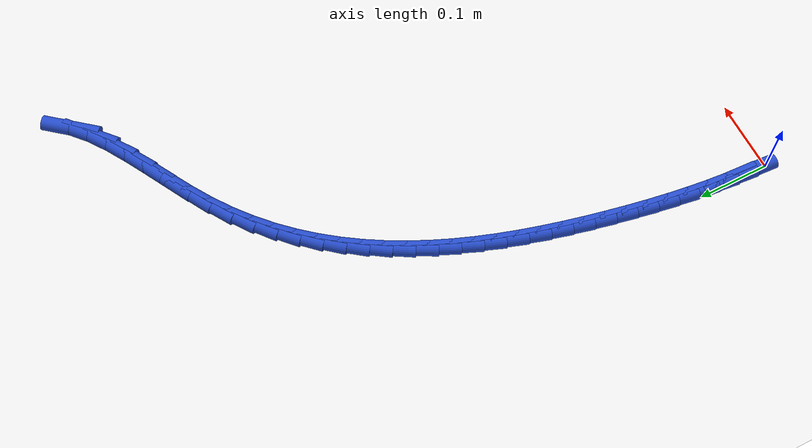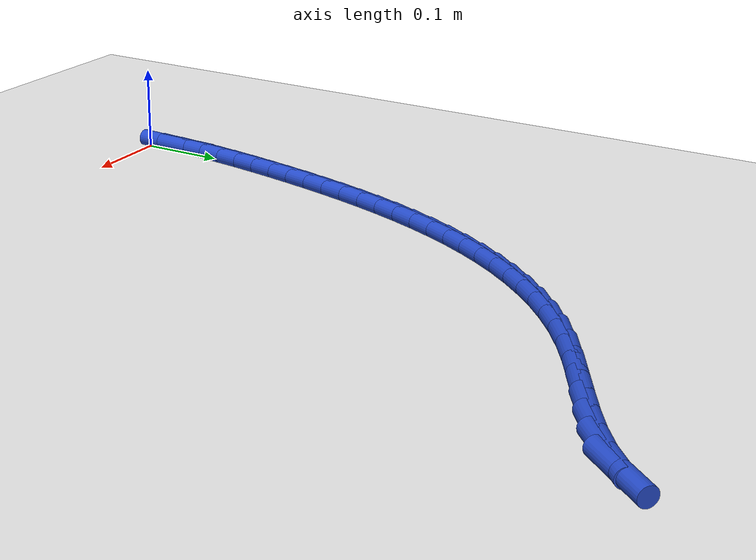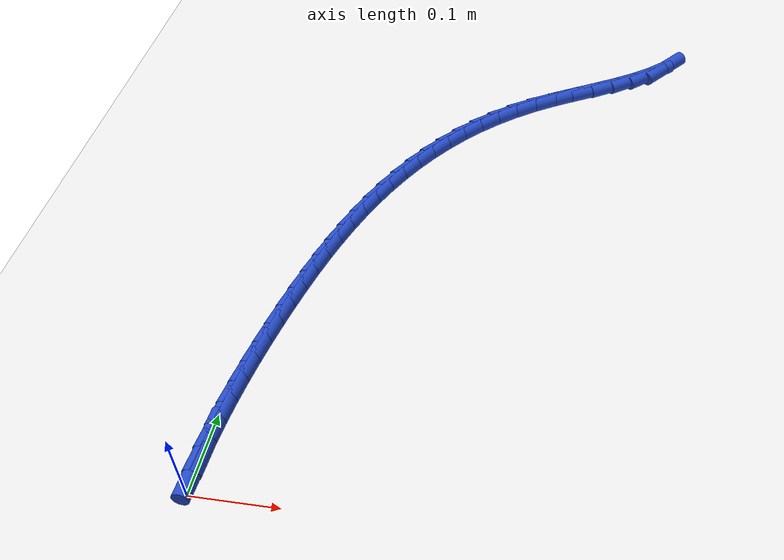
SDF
<sdf version="1.6">
 <world name="default">
  <model name="ground_plane">
   <static>1</static>
   <link name="link">
    <collision name="collision">
     <geometry><plane><normal>0 0 1</normal><size>100 100</size></plane></geometry>
     <surface><friction><ode><mu>100</mu><mu2>50</mu2></ode></friction></surface>
    </collision>
    <visual name="visual">
     <cast_shadows>0</cast_shadows>
     <geometry><plane><normal>0 0 1</normal><size>100 100</size></plane></geometry>
     <material>
      <script><uri>file://media/materials/scripts/gazebo.material</uri><name>Gazebo/WhiteGlow</name></script>
     </material>
    </visual>
   </link>
  </model>
  <model name="line">
   <link name="link_1">
    <pose>0.0007183228612163952 0.02924004847770259 0.01 0 1.57 1.5158970800816691</pose>
    <collision name="collision">
     <geometry><cylinder><radius>0.01</radius><length>0.08</length></cylinder></geometry>
    </collision>
    <visual name="visual">
     <material>
      <script><name>Gazebo/Blue</name><uri>file://media/materials/scripts/gazebo.material</uri></script>
     </material>
     <geometry><cylinder><radius>0.01</radius><length>0.08</length></cylinder></geometry>
    </visual>
   </link>
   <link name="link_2">
    <pose>0.0023122697255640793 0.058244912682233835 0.01 0 1.57 1.4874370785951219</pose>
    <collision name="collision">
     <geometry><cylinder><radius>0.01</radius><length>0.08</length></cylinder></geometry>
    </collision>
    <visual name="visual">
     <material>
      <script><name>Gazebo/Blue</name><uri>file://media/materials/scripts/gazebo.material</uri></script>
     </material>
     <geometry><cylinder><radius>0.01</radius><length>0.08</length></cylinder></geometry>
    </visual>
   </link>
   <link name="link_3">
    <pose>0.004719690675577835 0.08705805839520586 0.01 0 1.57 1.4610435413965277</pose>
    <collision name="collision">
     <geometry><cylinder><radius>0.01</radius><length>0.08</length></cylinder></geometry>
    </collision>
    <visual name="visual">
     <material>
      <script><name>Gazebo/Blue</name><uri>file://media/materials/scripts/gazebo.material</uri></script>
     </material>
     <geometry><cylinder><radius>0.01</radius><length>0.08</length></cylinder></geometry>
    </visual>
   </link>
   <link name="link_4">
    <pose>0.007878435793792452 0.11572295139823095 0.01 0 1.57 1.4368722158770506</pose>
    <collision name="collision">
     <geometry><cylinder><radius>0.01</radius><length>0.08</length></cylinder></geometry>
    </collision>
    <visual name="visual">
     <material>
      <script><name>Gazebo/Blue</name><uri>file://media/materials/scripts/gazebo.material</uri></script>
     </material>
     <geometry><cylinder><radius>0.01</radius><length>0.08</length></cylinder></geometry>
    </visual>
   </link>
   <link name="link_5">
    <pose>0.011726355162742714 0.1442830574729213 0.01 0 1.57 1.4150458155403258</pose>
    <collision name="collision">
     <geometry><cylinder><radius>0.01</radius><length>0.08</length></cylinder></geometry>
    </collision>
    <visual name="visual">
     <material>
      <script><name>Gazebo/Blue</name><uri>file://media/materials/scripts/gazebo.material</uri></script>
     </material>
     <geometry><cylinder><radius>0.01</radius><length>0.08</length></cylinder></geometry>
    </visual>
   </link>
   <link name="link_6">
    <pose>0.01620129886496342 0.1727818424008893 0.01 0 1.57 1.395655228277873</pose>
    <collision name="collision">
     <geometry><cylinder><radius>0.01</radius><length>0.08</length></cylinder></geometry>
    </collision>
    <visual name="visual">
     <material>
      <script><name>Gazebo/Blue</name><uri>file://media/materials/scripts/gazebo.material</uri></script>
     </material>
     <geometry><cylinder><radius>0.01</radius><length>0.08</length></cylinder></geometry>
    </visual>
   </link>
   <link name="link_7">
    <pose>0.021241116982989344 0.20126277196374703 0.01 0 1.57 1.378761685349251</pose>
    <collision name="collision">
     <geometry><cylinder><radius>0.01</radius><length>0.08</length></cylinder></geometry>
    </collision>
    <visual name="visual">
     <material>
      <script><name>Gazebo/Blue</name><uri>file://media/materials/scripts/gazebo.material</uri></script>
     </material>
     <geometry><cylinder><radius>0.01</radius><length>0.08</length></cylinder></geometry>
    </visual>
   </link>
   <link name="link_8">
    <pose>0.026783659599355282 0.22976931194310682 0.01 0 1.57 1.3635401479682643</pose>
    <collision name="collision">
     <geometry><cylinder><radius>0.01</radius><length>0.08</length></cylinder></geometry>
    </collision>
    <visual name="visual">
     <material>
      <script><name>Gazebo/Blue</name><uri>file://media/materials/scripts/gazebo.material</uri></script>
     </material>
     <geometry><cylinder><radius>0.01</radius><length>0.08</length></cylinder></geometry>
    </visual>
   </link>
   <link name="link_9">
    <pose>0.0327886819730688 0.2583271721288659 0.01 0 1.57 1.3462293695382168</pose>
    <collision name="collision">
     <geometry><cylinder><radius>0.01</radius><length>0.08</length></cylinder></geometry>
    </collision>
    <visual name="visual">
     <material>
      <script><name>Gazebo/Blue</name><uri>file://media/materials/scripts/gazebo.material</uri></script>
     </material>
     <geometry><cylinder><radius>0.01</radius><length>0.08</length></cylinder></geometry>
    </visual>
   </link>
   <link name="link_10">
    <pose>0.03931172046097369 0.28688442365862715 0.01 0 1.57 1.3257552817674427</pose>
    <collision name="collision">
     <geometry><cylinder><radius>0.01</radius><length>0.08</length></cylinder></geometry>
    </collision>
    <visual name="visual">
     <material>
      <script><name>Gazebo/Blue</name><uri>file://media/materials/scripts/gazebo.material</uri></script>
     </material>
     <geometry><cylinder><radius>0.01</radius><length>0.08</length></cylinder></geometry>
    </visual>
   </link>
   <link name="link_11">
    <pose>0.04643448327744529 0.315367923173681 0.01 0 1.57 1.3020485892004672</pose>
    <collision name="collision">
     <geometry><cylinder><radius>0.01</radius><length>0.08</length></cylinder></geometry>
    </collision>
    <visual name="visual">
     <material>
      <script><name>Gazebo/Blue</name><uri>file://media/materials/scripts/gazebo.material</uri></script>
     </material>
     <geometry><cylinder><radius>0.01</radius><length>0.08</length></cylinder></geometry>
    </visual>
   </link>
   <link name="link_12">
    <pose>0.054238679262937656 0.3437045268078285 0.01 0 1.57 1.2750260112713936</pose>
    <collision name="collision">
     <geometry><cylinder><radius>0.01</radius><length>0.08</length></cylinder></geometry>
    </collision>
    <visual name="visual">
     <material>
      <script><name>Gazebo/Blue</name><uri>file://media/materials/scripts/gazebo.material</uri></script>
     </material>
     <geometry><cylinder><radius>0.01</radius><length>0.08</length></cylinder></geometry>
    </visual>
   </link>
   <link name="link_13">
    <pose>0.06280601725790493 0.37182109069487074 0.01 0 1.57 1.244597310167133</pose>
    <collision name="collision">
     <geometry><cylinder><radius>0.01</radius><length>0.08</length></cylinder></geometry>
    </collision>
    <visual name="visual">
     <material>
      <script><name>Gazebo/Blue</name><uri>file://media/materials/scripts/gazebo.material</uri></script>
     </material>
     <geometry><cylinder><radius>0.01</radius><length>0.08</length></cylinder></geometry>
    </visual>
   </link>
   <link name="link_14">
    <pose>0.07221820610280122 0.3996444709686088 0.01 0 1.57 1.210673974683876</pose>
    <collision name="collision">
     <geometry><cylinder><radius>0.01</radius><length>0.08</length></cylinder></geometry>
    </collision>
    <visual name="visual">
     <material>
      <script><name>Gazebo/Blue</name><uri>file://media/materials/scripts/gazebo.material</uri></script>
     </material>
     <geometry><cylinder><radius>0.01</radius><length>0.08</length></cylinder></geometry>
    </visual>
   </link>
   <link name="link_15">
    <pose>0.0825569546380806 0.4271015237628437 0.01 0 1.57 1.1731798866829903</pose>
    <collision name="collision">
     <geometry><cylinder><radius>0.01</radius><length>0.08</length></cylinder></geometry>
    </collision>
    <visual name="visual">
     <material>
      <script><name>Gazebo/Blue</name><uri>file://media/materials/scripts/gazebo.material</uri></script>
     </material>
     <geometry><cylinder><radius>0.01</radius><length>0.08</length></cylinder></geometry>
    </visual>
   </link>
   <link name="link_16">
    <pose>0.09390397170419716 0.4541191052113763 0.01 0 1.57 1.1320641711577684</pose>
    <collision name="collision">
     <geometry><cylinder><radius>0.01</radius><length>0.08</length></cylinder></geometry>
    </collision>
    <visual name="visual">
     <material>
      <script><name>Gazebo/Blue</name><uri>file://media/materials/scripts/gazebo.material</uri></script>
     </material>
     <geometry><cylinder><radius>0.01</radius><length>0.08</length></cylinder></geometry>
    </visual>
   </link>
   <link name="link_17">
    <pose>0.1063409661416051 0.4806240714480081 0.01 0 1.57 1.0873161502114705</pose>
    <collision name="collision">
     <geometry><cylinder><radius>0.01</radius><length>0.08</length></cylinder></geometry>
    </collision>
    <visual name="visual">
     <material>
      <script><name>Gazebo/Blue</name><uri>file://media/materials/scripts/gazebo.material</uri></script>
     </material>
     <geometry><cylinder><radius>0.01</radius><length>0.08</length></cylinder></geometry>
    </visual>
   </link>
   <link name="link_18">
    <pose>0.11994964679075837 0.5065432786065397 0.01 0 1.57 1.0389818778242934</pose>
    <collision name="collision">
     <geometry><cylinder><radius>0.01</radius><length>0.08</length></cylinder></geometry>
    </collision>
    <visual name="visual">
     <material>
      <script><name>Gazebo/Blue</name><uri>file://media/materials/scripts/gazebo.material</uri></script>
     </material>
     <geometry><cylinder><radius>0.01</radius><length>0.08</length></cylinder></geometry>
    </visual>
   </link>
   <link name="link_19">
    <pose>0.1348117224921112 0.5318035828207723 0.01 0 1.57 0.9871811251425942</pose>
    <collision name="collision">
     <geometry><cylinder><radius>0.01</radius><length>0.08</length></cylinder></geometry>
    </collision>
    <visual name="visual">
     <material>
      <script><name>Gazebo/Blue</name><uri>file://media/materials/scripts/gazebo.material</uri></script>
     </material>
     <geometry><cylinder><radius>0.01</radius><length>0.08</length></cylinder></geometry>
    </visual>
   </link>
   <link name="link_20">
    <pose>0.15100890208611756 0.556331840224507 0.01 0 1.57 0.9321229770418913</pose>
    <collision name="collision">
     <geometry><cylinder><radius>0.01</radius><length>0.08</length></cylinder></geometry>
    </collision>
    <visual name="visual">
     <material>
      <script><name>Gazebo/Blue</name><uri>file://media/materials/scripts/gazebo.material</uri></script>
     </material>
     <geometry><cylinder><radius>0.01</radius><length>0.08</length></cylinder></geometry>
    </visual>
   </link>
   <link name="link_21">
    <pose>0.16862289441323175 0.5800549069515448 0.01 0 1.57 0.8741175440049855</pose>
    <collision name="collision">
     <geometry><cylinder><radius>0.01</radius><length>0.08</length></cylinder></geometry>
    </collision>
    <visual name="visual">
     <material>
      <script><name>Gazebo/Blue</name><uri>file://media/materials/scripts/gazebo.material</uri></script>
     </material>
     <geometry><cylinder><radius>0.01</radius><length>0.08</length></cylinder></geometry>
    </visual>
   </link>
   <link name="link_22">
    <pose>0.18773540831390773 0.6028996391356868 0.01 0 1.57 0.8135809383694007</pose>
    <collision name="collision">
     <geometry><cylinder><radius>0.01</radius><length>0.08</length></cylinder></geometry>
    </collision>
    <visual name="visual">
     <material>
      <script><name>Gazebo/Blue</name><uri>file://media/materials/scripts/gazebo.material</uri></script>
     </material>
     <geometry><cylinder><radius>0.01</radius><length>0.08</length></cylinder></geometry>
    </visual>
   </link>
   <link name="link_23">
    <pose>0.20842815262859957 0.624792892910734 0.01 0 1.57 0.7510309021639047</pose>
    <collision name="collision">
     <geometry><cylinder><radius>0.01</radius><length>0.08</length></cylinder></geometry>
    </collision>
    <visual name="visual">
     <material>
      <script><name>Gazebo/Blue</name><uri>file://media/materials/scripts/gazebo.material</uri></script>
     </material>
     <geometry><cylinder><radius>0.01</radius><length>0.08</length></cylinder></geometry>
    </visual>
   </link>
   <link name="link_24">
    <pose>0.2307828361977615 0.6456615244104875 0.01 0 1.57 0.6870715143448622</pose>
    <collision name="collision">
     <geometry><cylinder><radius>0.01</radius><length>0.08</length></cylinder></geometry>
    </collision>
    <visual name="visual">
     <material>
      <script><name>Gazebo/Blue</name><uri>file://media/materials/scripts/gazebo.material</uri></script>
     </material>
     <geometry><cylinder><radius>0.01</radius><length>0.08</length></cylinder></geometry>
    </visual>
   </link>
   <link name="link_25">
    <pose>0.25488116786184756 0.6654323897687481 0.01 0 1.57 0.6223672143764937</pose>
    <collision name="collision">
     <geometry><cylinder><radius>0.01</radius><length>0.08</length></cylinder></geometry>
    </collision>
    <visual name="visual">
     <material>
      <script><name>Gazebo/Blue</name><uri>file://media/materials/scripts/gazebo.material</uri></script>
     </material>
     <geometry><cylinder><radius>0.01</radius><length>0.08</length></cylinder></geometry>
    </visual>
   </link>
   <link name="link_26">
    <pose>0.28080485646131176 0.6840323451193171 0.01 0 1.57 0.5607926366893917</pose>
    <collision name="collision">
     <geometry><cylinder><radius>0.01</radius><length>0.08</length></cylinder></geometry>
    </collision>
    <visual name="visual">
     <material>
      <script><name>Gazebo/Blue</name><uri>file://media/materials/scripts/gazebo.material</uri></script>
     </material>
     <geometry><cylinder><radius>0.01</radius><length>0.08</length></cylinder></geometry>
    </visual>
   </link>
   <link name="link_27">
    <pose>0.30852955385874453 0.7014449599614958 0.01 0 1.57 0.5205593701171067</pose>
    <collision name="collision">
     <geometry><cylinder><radius>0.01</radius><length>0.08</length></cylinder></geometry>
    </collision>
    <visual name="visual">
     <material>
      <script><name>Gazebo/Blue</name><uri>file://media/materials/scripts/gazebo.material</uri></script>
     </material>
     <geometry><cylinder><radius>0.01</radius><length>0.08</length></cylinder></geometry>
    </visual>
   </link>
   <link name="link_28">
    <pose>0.33739517585041395 0.7179937600390222 0.01 0 1.57 0.5061011511809811</pose>
    <collision name="collision">
     <geometry><cylinder><radius>0.01</radius><length>0.08</length></cylinder></geometry>
    </collision>
    <visual name="visual">
     <material>
      <script><name>Gazebo/Blue</name><uri>file://media/materials/scripts/gazebo.material</uri></script>
     </material>
     <geometry><cylinder><radius>0.01</radius><length>0.08</length></cylinder></geometry>
    </visual>
   </link>
   <link name="link_29">
    <pose>0.36650582641331186 0.7341283701243384 0.01 0 1.57 0.5166988833297147</pose>
    <collision name="collision">
     <geometry><cylinder><radius>0.01</radius><length>0.08</length></cylinder></geometry>
    </collision>
    <visual name="visual">
     <material>
      <script><name>Gazebo/Blue</name><uri>file://media/materials/scripts/gazebo.material</uri></script>
     </material>
     <geometry><cylinder><radius>0.01</radius><length>0.08</length></cylinder></geometry>
    </visual>
   </link>
   <link name="link_30">
    <pose>0.3949652219921632 0.7502986222205614 0.01 0 1.57 0.5542001710778023</pose>
    <collision name="collision">
     <geometry><cylinder><radius>0.01</radius><length>0.08</length></cylinder></geometry>
    </collision>
    <visual name="visual">
     <material>
      <script><name>Gazebo/Blue</name><uri>file://media/materials/scripts/gazebo.material</uri></script>
     </material>
     <geometry><cylinder><radius>0.01</radius><length>0.08</length></cylinder></geometry>
    </visual>
   </link>
   <link name="link_31">
    <pose>0.4218770790316925 0.7669543483308078 0.01 0 1.57 0.6233241429852437</pose>
    <collision name="collision">
     <geometry><cylinder><radius>0.01</radius><length>0.08</length></cylinder></geometry>
    </collision>
    <visual name="visual">
     <material>
      <script><name>Gazebo/Blue</name><uri>file://media/materials/scripts/gazebo.material</uri></script>
     </material>
     <geometry><cylinder><radius>0.01</radius><length>0.08</length></cylinder></geometry>
    </visual>
   </link>
   <link name="link_32">
    <pose>0.4463451139766249 0.7845453804581949 0.01 0 1.57 0.7317952171511489</pose>
    <collision name="collision">
     <geometry><cylinder><radius>0.01</radius><length>0.08</length></cylinder></geometry>
    </collision>
    <visual name="visual">
     <material>
      <script><name>Gazebo/Blue</name><uri>file://media/materials/scripts/gazebo.material</uri></script>
     </material>
     <geometry><cylinder><radius>0.01</radius><length>0.08</length></cylinder></geometry>
    </visual>
   </link>
   <link name="link_33">
    <pose>0.4674730432716852 0.8035215506058394 0.01 0 1.57 0.8889868237704391</pose>
    <collision name="collision">
     <geometry><cylinder><radius>0.01</radius><length>0.08</length></cylinder></geometry>
    </collision>
    <visual name="visual">
     <material>
      <script><name>Gazebo/Blue</name><uri>file://media/materials/scripts/gazebo.material</uri></script>
     </material>
     <geometry><cylinder><radius>0.01</radius><length>0.08</length></cylinder></geometry>
    </visual>
   </link>
   <link name="link_272">
    <pose>0.0024135333329597464 0.05796729216663013 0.01 0 1.57 1.5291842380129175</pose>
    <collision name="collision">
     <geometry><cylinder><radius>0.01</radius><length>0.08</length></cylinder></geometry>
    </collision>
    <visual name="visual">
     <material>
      <script><name>Gazebo/Blue</name><uri>file://media/materials/scripts/gazebo.material</uri></script>
     </material>
     <geometry><cylinder><radius>0.01</radius><length>0.08</length></cylinder></geometry>
    </visual>
   </link>
  </model>
 </world>
</sdf>
